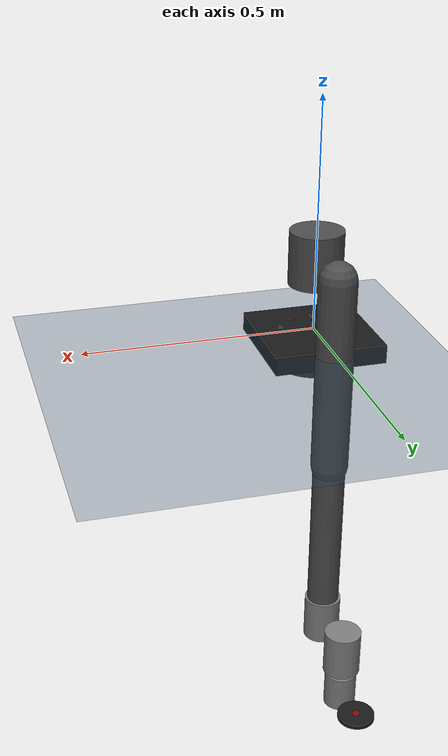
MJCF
<mujoco model="ur5e_scene">

  <option timestep="0.002" gravity="0 0 -9.81" integrator="RK4"/>

  <!-- Include robot model -->
  <include file="ur5e.xml"/>

  <visual>
    <headlight ambient="0.3 0.3 0.3" diffuse="0.7 0.7 0.7" specular="0.1 0.1 0.1"/>
    <rgba haze="0.15 0.25 0.35 1"/>
    <quality shadowsize="4096" numslices="28" numstacks="28"/>
  </visual>

  <asset>
    <texture type="skybox" builtin="gradient"
             rgb1="0.3 0.5 0.7" rgb2="0 0 0"
             width="512" height="3072"/>
    <texture type="2d" name="groundplane"
             builtin="checker" rgb1="0.2 0.3 0.4" rgb2="0.1 0.2 0.3"
             width="300" height="300" mark="edge" markrgb="0.8 0.8 0.8"/>
    <material name="groundplane" texture="groundplane" texrepeat="5 5"
              texuniform="true" reflectance="0.2"/>
  </asset>

  <worldbody>
    <!-- Lighting -->
    <light name="spotlight" mode="targetbodycom" target="shoulder_link"
           pos="0 -1 2" diffuse="0.8 0.8 0.8" specular="0.3 0.3 0.3"/>
    <light name="ambient1" pos="-2 -2 3" dir="1 1 -1"
           diffuse="0.4 0.4 0.4" specular="0.1 0.1 0.1"/>
    <light name="ambient2" pos="2 -2 3" dir="-1 1 -1"
           diffuse="0.4 0.4 0.4" specular="0.1 0.1 0.1"/>

    <!-- Ground plane -->
    <geom name="floor" type="plane" pos="0 0 0"
          size="3 3 0.1" material="groundplane" conaffinity="1"/>

    <!-- Base mount plate (cosmetic) -->
    <geom name="mount_plate" type="box"
          pos="0 0 -0.02" size="0.12 0.12 0.02"
          rgba="0.1 0.1 0.1 1" contype="0" conaffinity="0"/>
  </worldbody>

</mujoco>

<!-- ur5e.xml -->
<mujoco model="ur5e">

  <compiler angle="radian" autolimits="true" eulerseq="xyz"/>

  <option timestep="0.002" gravity="0 0 -9.81" integrator="RK4">
    <flag contact="enable"/>
  </option>

  <default>
    <default class="ur5e">
      <joint limited="true" damping="1.0" armature="0.01" frictionloss="0.1"/>
      <geom contype="1" conaffinity="1" rgba="0.7 0.7 0.7 1" group="1"/>
    </default>
    <default class="visual">
      <geom contype="0" conaffinity="0" group="2" rgba="0.2 0.5 0.8 1"/>
    </default>
    <default class="collision">
      <geom contype="1" conaffinity="1" group="3" rgba="0.5 0.5 0.5 0"/>
    </default>
  </default>

  <!-- ── Kinematic chain ─────────────────────────────────────────────── -->
  <worldbody>

    <!-- Fixed base plate -->
    <body name="base" pos="0 0 0">
      <geom class="visual" name="base_visual" type="cylinder"
            size="0.076 0.04" pos="0 0 -0.04" rgba="0.2 0.2 0.2 1"/>
      <geom class="collision" name="base_col" type="cylinder"
            size="0.076 0.04" pos="0 0 -0.04"/>

      <!-- ── Joint 0: Shoulder Pan (rotate around z) ── -->
      <body name="shoulder_link" pos="0 0 0.1625">
        <inertial mass="3.7" pos="0 0 -0.02"
                  diaginertia="0.010267 0.010267 0.00666"/>
        <joint name="shoulder_pan_joint"  class="ur5e"
               axis="0 0 1" range="-6.2832 6.2832"/>
        <geom class="visual" name="shoulder_v" type="cylinder"
              size="0.058 0.058" pos="0 0 0" rgba="0.3 0.3 0.3 1"/>
        <geom class="collision" name="shoulder_c" type="cylinder"
              size="0.058 0.058"/>

        <!-- ── Joint 1: Shoulder Lift (rotate around y, aligned via euler) ── -->
        <body name="upper_arm_link" pos="0 0.1333 0" euler="0 0 -1.5708">
          <inertial mass="8.393" pos="0 0 0.2125"
                    diaginertia="0.22689 0.22689 0.01511"/>
          <joint name="shoulder_lift_joint" class="ur5e"
                 axis="0 1 0" range="-6.2832 6.2832"/>
          <!-- Upper arm extends 0.425 m along -z in this frame -->
          <geom class="visual" name="upper_arm_v" type="capsule"
                fromto="0 0 0 0 0 -0.425" size="0.04" rgba="0.3 0.3 0.3 1"/>
          <geom class="collision" name="upper_arm_c" type="capsule"
                fromto="0 0 0 0 0 -0.425" size="0.04"/>

          <!-- ── Joint 2: Elbow ── -->
          <body name="forearm_link" pos="0 0 -0.425">
            <inertial mass="2.275" pos="0 0 -0.196"
                      diaginertia="0.04944 0.04944 0.004095"/>
            <joint name="elbow_joint" class="ur5e"
                   axis="0 1 0" range="-3.1416 3.1416"/>
            <!-- Forearm extends 0.3922 m along -z -->
            <geom class="visual" name="forearm_v" type="capsule"
                  fromto="0 0 0 0 0 -0.3922" size="0.035" rgba="0.3 0.3 0.3 1"/>
            <geom class="collision" name="forearm_c" type="capsule"
                  fromto="0 0 0 0 0 -0.3922" size="0.035"/>

            <!-- ── Joint 3: Wrist 1 ── -->
            <body name="wrist_1_link" pos="0 0 -0.3922" euler="0 0 1.5708">
              <inertial mass="1.219" pos="0 0 0"
                        diaginertia="0.11117 0.11117 0.21942"/>
              <joint name="wrist_1_joint" class="ur5e"
                     axis="0 1 0" range="-6.2832 6.2832"/>
              <geom class="visual" name="wrist_1_v" type="cylinder"
                    size="0.04 0.05" rgba="0.5 0.5 0.5 1"/>
              <geom class="collision" name="wrist_1_c" type="cylinder"
                    size="0.04 0.05"/>

              <!-- ── Joint 4: Wrist 2 (rotate around z in this frame) ── -->
              <body name="wrist_2_link" pos="0 0.1333 0">
                <inertial mass="1.219" pos="0 0 0"
                          diaginertia="0.11117 0.11117 0.21942"/>
                <joint name="wrist_2_joint" class="ur5e"
                       axis="0 0 1" range="-6.2832 6.2832"/>
                <geom class="visual" name="wrist_2_v" type="cylinder"
                      size="0.04 0.05" rgba="0.5 0.5 0.5 1"/>
                <geom class="collision" name="wrist_2_c" type="cylinder"
                      size="0.04 0.05"/>

                <!-- ── Joint 5: Wrist 3 ── -->
                <body name="wrist_3_link" pos="0 0 -0.0997">
                  <inertial mass="0.1889" pos="0 0.0996 0"
                            diaginertia="0.01714 0.01714 0.03382"/>
                  <joint name="wrist_3_joint" class="ur5e"
                         axis="0 1 0" range="-6.2832 6.2832"/>
                  <geom class="visual" name="wrist_3_v" type="cylinder"
                        size="0.035 0.04" rgba="0.5 0.5 0.5 1"/>
                  <geom class="collision" name="wrist_3_c" type="cylinder"
                        size="0.035 0.04"/>

                  <!-- End-effector / flange -->
                  <body name="flange" pos="0 0.0996 0">
                    <geom class="visual" name="flange_v" type="cylinder"
                          size="0.04 0.005" rgba="0.1 0.1 0.1 1"/>
                    <!-- Tool Centre Point site -->
                    <site name="tcp" pos="0 0 0" size="0.01"
                          rgba="1 0 0 0.5" type="sphere"/>
                  </body>

                </body> <!-- wrist_3_link -->
              </body> <!-- wrist_2_link -->
            </body> <!-- wrist_1_link -->
          </body> <!-- forearm_link -->
        </body> <!-- upper_arm_link -->
      </body> <!-- shoulder_link -->
    </body> <!-- base -->

  </worldbody>

  <!-- ── Position actuators (kp = high stiffness to track position commands) ── -->
  <actuator>
    <position name="shoulder_pan"  joint="shoulder_pan_joint"
              kp="4000" ctrlrange="-6.2832 6.2832"/>
    <position name="shoulder_lift" joint="shoulder_lift_joint"
              kp="4000" ctrlrange="-6.2832 6.2832"/>
    <position name="elbow"         joint="elbow_joint"
              kp="2000" ctrlrange="-3.1416 3.1416"/>
    <position name="wrist_1"       joint="wrist_1_joint"
              kp="1500" ctrlrange="-6.2832 6.2832"/>
    <position name="wrist_2"       joint="wrist_2_joint"
              kp="1500" ctrlrange="-6.2832 6.2832"/>
    <position name="wrist_3"       joint="wrist_3_joint"
              kp="1000" ctrlrange="-6.2832 6.2832"/>
  </actuator>

</mujoco>
